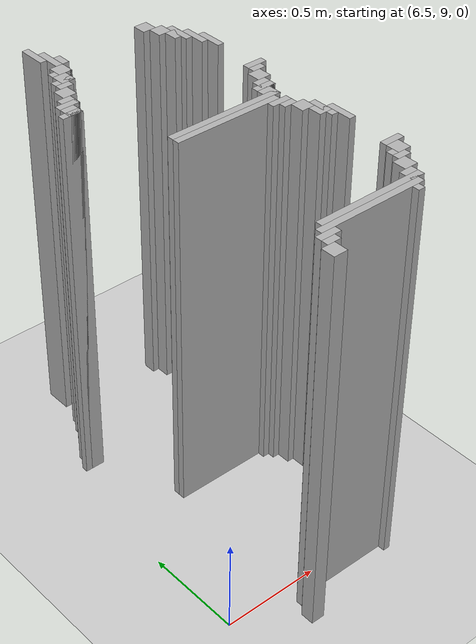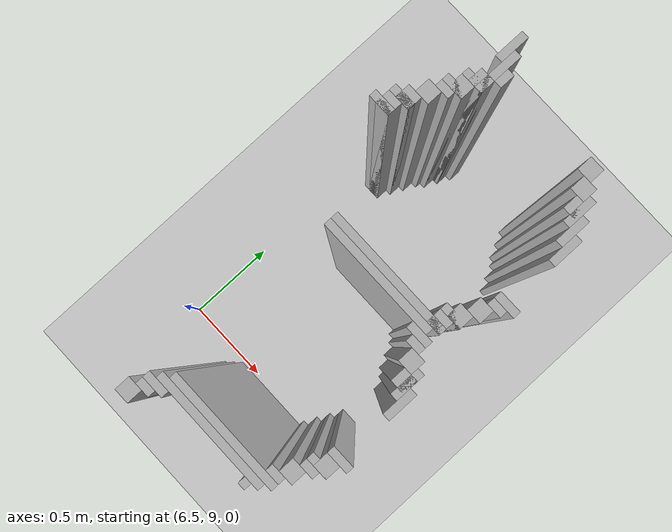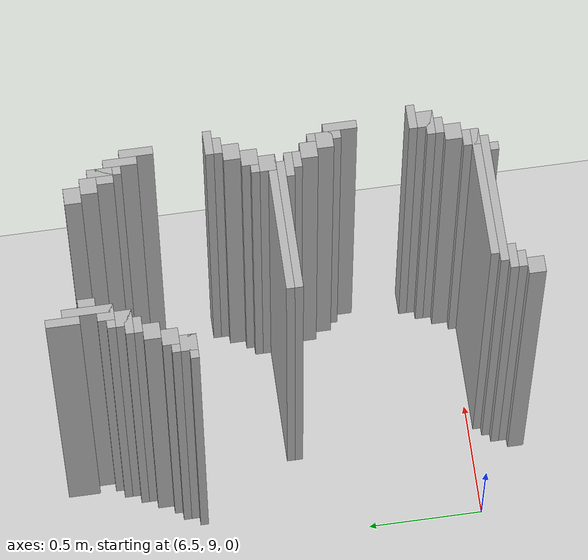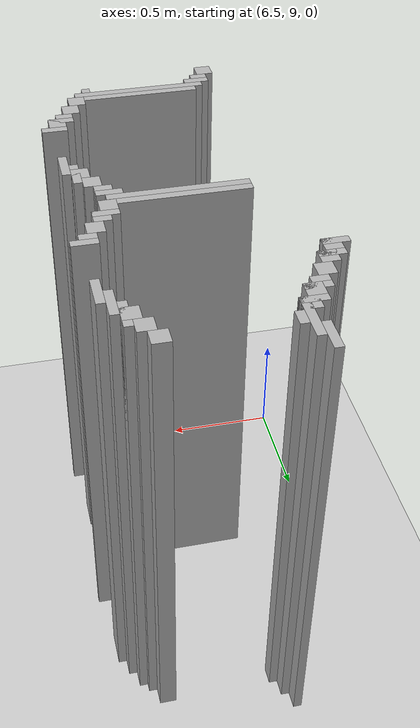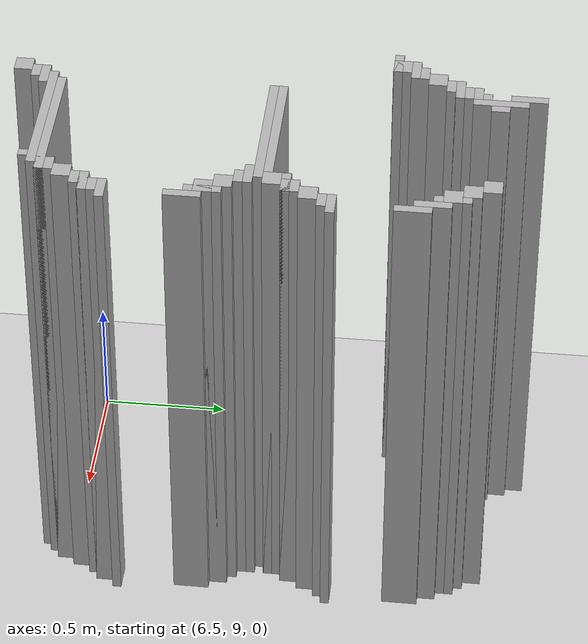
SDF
<sdf version="1.6">
 <world name="slam_world">
  <model name="ground_plane">
   <static>true</static>
   <link name="link">
    <collision name="collision">
     <geometry><plane><normal>0 0 1</normal><size>100 100</size></plane></geometry>
    </collision>
    <visual name="visual">
     <geometry><plane><normal>0 0 1</normal><size>100 100</size></plane></geometry>
     <material>
      <ambient>0.8 0.8 0.8 1</ambient>
      <diffuse>0.8 0.8 0.8 1</diffuse>
      <specular>0.8 0.8 0.8 1</specular>
     </material>
    </visual>
   </link>
  </model>
  <model name="wall_2181">
   <static>true</static>
   <pose>6.838747099767981 10.719257540603248 1.0 0 0 0</pose>
   <link name="link">
    <collision name="collision">
     <geometry><box><size>0.03480278422273782 0.13921113689095127 2.0</size></box></geometry>
    </collision>
    <visual name="visual">
     <geometry><box><size>0.03480278422273782 0.13921113689095127 2.0</size></box></geometry>
     <material><ambient>0.5 0.5 0.5 1</ambient><diffuse>0.7 0.7 0.7 1</diffuse></material>
    </visual>
   </link>
  </model>
  <model name="wall_2201">
   <static>true</static>
   <pose>6.8735498839907185 10.614849187935034 1.0 0 0 0</pose>
   <link name="link">
    <collision name="collision">
     <geometry><box><size>0.03480278422273782 0.2088167053364269 2.0</size></box></geometry>
    </collision>
    <visual name="visual">
     <geometry><box><size>0.03480278422273782 0.2088167053364269 2.0</size></box></geometry>
     <material><ambient>0.5 0.5 0.5 1</ambient><diffuse>0.7 0.7 0.7 1</diffuse></material>
    </visual>
   </link>
  </model>
  <model name="wall_2223">
   <static>true</static>
   <pose>6.908352668213457 10.614849187935034 1.0 0 0 0</pose>
   <link name="link">
    <collision name="collision">
     <geometry><box><size>0.03480278422273782 0.06960556844547564 2.0</size></box></geometry>
    </collision>
    <visual name="visual">
     <geometry><box><size>0.03480278422273782 0.06960556844547564 2.0</size></box></geometry>
     <material><ambient>0.5 0.5 0.5 1</ambient><diffuse>0.7 0.7 0.7 1</diffuse></material>
    </visual>
   </link>
  </model>
  <model name="wall_2224">
   <static>true</static>
   <pose>7.378190255220417 10.614849187935034 1.0 0 0 0</pose>
   <link name="link">
    <collision name="collision">
     <geometry><box><size>0.06960556844547564 0.06960556844547564 2.0</size></box></geometry>
    </collision>
    <visual name="visual">
     <geometry><box><size>0.06960556844547564 0.06960556844547564 2.0</size></box></geometry>
     <material><ambient>0.5 0.5 0.5 1</ambient><diffuse>0.7 0.7 0.7 1</diffuse></material>
    </visual>
   </link>
  </model>
  <model name="wall_2242">
   <static>true</static>
   <pose>6.85614849187935 10.54524361948956 1.0 0 0 0</pose>
   <link name="link">
    <collision name="collision">
     <geometry><box><size>0.06960556844547564 0.06960556844547564 2.0</size></box></geometry>
    </collision>
    <visual name="visual">
     <geometry><box><size>0.06960556844547564 0.06960556844547564 2.0</size></box></geometry>
     <material><ambient>0.5 0.5 0.5 1</ambient><diffuse>0.7 0.7 0.7 1</diffuse></material>
    </visual>
   </link>
  </model>
  <model name="wall_2243">
   <static>true</static>
   <pose>7.412993039443156 10.54524361948956 1.0 0 0 0</pose>
   <link name="link">
    <collision name="collision">
     <geometry><box><size>0.06960556844547564 0.06960556844547564 2.0</size></box></geometry>
    </collision>
    <visual name="visual">
     <geometry><box><size>0.06960556844547564 0.06960556844547564 2.0</size></box></geometry>
     <material><ambient>0.5 0.5 0.5 1</ambient><diffuse>0.7 0.7 0.7 1</diffuse></material>
    </visual>
   </link>
  </model>
  <model name="wall_2259">
   <static>true</static>
   <pose>6.838747099767981 10.52784222737819 1.0 0 0 0</pose>
   <link name="link">
    <collision name="collision">
     <geometry><box><size>0.10440835266821345 0.03480278422273782 2.0</size></box></geometry>
    </collision>
    <visual name="visual">
     <geometry><box><size>0.10440835266821345 0.03480278422273782 2.0</size></box></geometry>
     <material><ambient>0.5 0.5 0.5 1</ambient><diffuse>0.7 0.7 0.7 1</diffuse></material>
    </visual>
   </link>
  </model>
  <model name="wall_2260">
   <static>true</static>
   <pose>7.465197215777262 10.475638051044083 1.0 0 0 0</pose>
   <link name="link">
    <collision name="collision">
     <geometry><box><size>0.03480278422273782 0.13921113689095127 2.0</size></box></geometry>
    </collision>
    <visual name="visual">
     <geometry><box><size>0.03480278422273782 0.13921113689095127 2.0</size></box></geometry>
     <material><ambient>0.5 0.5 0.5 1</ambient><diffuse>0.7 0.7 0.7 1</diffuse></material>
    </visual>
   </link>
  </model>
  <model name="wall_2276">
   <static>true</static>
   <pose>6.821345707656612 10.475638051044083 1.0 0 0 0</pose>
   <link name="link">
    <collision name="collision">
     <geometry><box><size>0.06960556844547564 0.06960556844547564 2.0</size></box></geometry>
    </collision>
    <visual name="visual">
     <geometry><box><size>0.06960556844547564 0.06960556844547564 2.0</size></box></geometry>
     <material><ambient>0.5 0.5 0.5 1</ambient><diffuse>0.7 0.7 0.7 1</diffuse></material>
    </visual>
   </link>
  </model>
  <model name="wall_2277">
   <static>true</static>
   <pose>7.447795823665893 10.475638051044083 1.0 0 0 0</pose>
   <link name="link">
    <collision name="collision">
     <geometry><box><size>0.06960556844547564 0.06960556844547564 2.0</size></box></geometry>
    </collision>
    <visual name="visual">
     <geometry><box><size>0.06960556844547564 0.06960556844547564 2.0</size></box></geometry>
     <material><ambient>0.5 0.5 0.5 1</ambient><diffuse>0.7 0.7 0.7 1</diffuse></material>
    </visual>
   </link>
  </model>
  <model name="wall_2293">
   <static>true</static>
   <pose>6.803944315545244 10.458236658932714 1.0 0 0 0</pose>
   <link name="link">
    <collision name="collision">
     <geometry><box><size>0.10440835266821345 0.03480278422273782 2.0</size></box></geometry>
    </collision>
    <visual name="visual">
     <geometry><box><size>0.10440835266821345 0.03480278422273782 2.0</size></box></geometry>
     <material><ambient>0.5 0.5 0.5 1</ambient><diffuse>0.7 0.7 0.7 1</diffuse></material>
    </visual>
   </link>
  </model>
  <model name="wall_2294">
   <static>true</static>
   <pose>7.5 10.406032482598608 1.0 0 0 0</pose>
   <link name="link">
    <collision name="collision">
     <geometry><box><size>0.03480278422273782 0.13921113689095127 2.0</size></box></geometry>
    </collision>
    <visual name="visual">
     <geometry><box><size>0.03480278422273782 0.13921113689095127 2.0</size></box></geometry>
     <material><ambient>0.5 0.5 0.5 1</ambient><diffuse>0.7 0.7 0.7 1</diffuse></material>
    </visual>
   </link>
  </model>
  <model name="wall_2306">
   <static>true</static>
   <pose>6.786542923433874 10.423433874709977 1.0 0 0 0</pose>
   <link name="link">
    <collision name="collision">
     <geometry><box><size>0.06960556844547564 0.03480278422273782 2.0</size></box></geometry>
    </collision>
    <visual name="visual">
     <geometry><box><size>0.06960556844547564 0.03480278422273782 2.0</size></box></geometry>
     <material><ambient>0.5 0.5 0.5 1</ambient><diffuse>0.7 0.7 0.7 1</diffuse></material>
    </visual>
   </link>
  </model>
  <model name="wall_2318">
   <static>true</static>
   <pose>6.751740139211137 10.37122969837587 1.0 0 0 0</pose>
   <link name="link">
    <collision name="collision">
     <geometry><box><size>0.06960556844547564 0.06960556844547564 2.0</size></box></geometry>
    </collision>
    <visual name="visual">
     <geometry><box><size>0.06960556844547564 0.06960556844547564 2.0</size></box></geometry>
     <material><ambient>0.5 0.5 0.5 1</ambient><diffuse>0.7 0.7 0.7 1</diffuse></material>
    </visual>
   </link>
  </model>
  <model name="wall_2319">
   <static>true</static>
   <pose>7.534802784222737 10.336426914153131 1.0 0 0 0</pose>
   <link name="link">
    <collision name="collision">
     <geometry><box><size>0.03480278422273782 0.13921113689095127 2.0</size></box></geometry>
    </collision>
    <visual name="visual">
     <geometry><box><size>0.03480278422273782 0.13921113689095127 2.0</size></box></geometry>
     <material><ambient>0.5 0.5 0.5 1</ambient><diffuse>0.7 0.7 0.7 1</diffuse></material>
    </visual>
   </link>
  </model>
  <model name="wall_2335">
   <static>true</static>
   <pose>6.716937354988398 10.301624129930394 1.0 0 0 0</pose>
   <link name="link">
    <collision name="collision">
     <geometry><box><size>0.06960556844547564 0.06960556844547564 2.0</size></box></geometry>
    </collision>
    <visual name="visual">
     <geometry><box><size>0.06960556844547564 0.06960556844547564 2.0</size></box></geometry>
     <material><ambient>0.5 0.5 0.5 1</ambient><diffuse>0.7 0.7 0.7 1</diffuse></material>
    </visual>
   </link>
  </model>
  <model name="wall_2352">
   <static>true</static>
   <pose>6.69953596287703 10.284222737819025 1.0 0 0 0</pose>
   <link name="link">
    <collision name="collision">
     <geometry><box><size>0.10440835266821345 0.03480278422273782 2.0</size></box></geometry>
    </collision>
    <visual name="visual">
     <geometry><box><size>0.10440835266821345 0.03480278422273782 2.0</size></box></geometry>
     <material><ambient>0.5 0.5 0.5 1</ambient><diffuse>0.7 0.7 0.7 1</diffuse></material>
    </visual>
   </link>
  </model>
  <model name="wall_2365">
   <static>true</static>
   <pose>6.682134570765661 10.232018561484919 1.0 0 0 0</pose>
   <link name="link">
    <collision name="collision">
     <geometry><box><size>0.06960556844547564 0.06960556844547564 2.0</size></box></geometry>
    </collision>
    <visual name="visual">
     <geometry><box><size>0.06960556844547564 0.06960556844547564 2.0</size></box></geometry>
     <material><ambient>0.5 0.5 0.5 1</ambient><diffuse>0.7 0.7 0.7 1</diffuse></material>
    </visual>
   </link>
  </model>
  <model name="wall_2375">
   <static>true</static>
   <pose>6.664733178654292 10.214617169373549 1.0 0 0 0</pose>
   <link name="link">
    <collision name="collision">
     <geometry><box><size>0.10440835266821345 0.03480278422273782 2.0</size></box></geometry>
    </collision>
    <visual name="visual">
     <geometry><box><size>0.10440835266821345 0.03480278422273782 2.0</size></box></geometry>
     <material><ambient>0.5 0.5 0.5 1</ambient><diffuse>0.7 0.7 0.7 1</diffuse></material>
    </visual>
   </link>
  </model>
  <model name="wall_2445">
   <static>true</static>
   <pose>7.534802784222737 10.04060324825986 1.0 0 0 0</pose>
   <link name="link">
    <collision name="collision">
     <geometry><box><size>0.10440835266821345 0.03480278422273782 2.0</size></box></geometry>
    </collision>
    <visual name="visual">
     <geometry><box><size>0.10440835266821345 0.03480278422273782 2.0</size></box></geometry>
     <material><ambient>0.5 0.5 0.5 1</ambient><diffuse>0.7 0.7 0.7 1</diffuse></material>
    </visual>
   </link>
  </model>
  <model name="wall_2458">
   <static>true</static>
   <pose>7.517401392111369 10.005800464037122 1.0 0 0 0</pose>
   <link name="link">
    <collision name="collision">
     <geometry><box><size>0.06960556844547564 0.03480278422273782 2.0</size></box></geometry>
    </collision>
    <visual name="visual">
     <geometry><box><size>0.06960556844547564 0.03480278422273782 2.0</size></box></geometry>
     <material><ambient>0.5 0.5 0.5 1</ambient><diffuse>0.7 0.7 0.7 1</diffuse></material>
    </visual>
   </link>
  </model>
  <model name="wall_2470">
   <static>true</static>
   <pose>7.48259860788863 9.953596287703016 1.0 0 0 0</pose>
   <link name="link">
    <collision name="collision">
     <geometry><box><size>0.06960556844547564 0.06960556844547564 2.0</size></box></geometry>
    </collision>
    <visual name="visual">
     <geometry><box><size>0.06960556844547564 0.06960556844547564 2.0</size></box></geometry>
     <material><ambient>0.5 0.5 0.5 1</ambient><diffuse>0.7 0.7 0.7 1</diffuse></material>
    </visual>
   </link>
  </model>
  <model name="wall_2486">
   <static>true</static>
   <pose>7.447795823665893 9.88399071925754 1.0 0 0 0</pose>
   <link name="link">
    <collision name="collision">
     <geometry><box><size>0.06960556844547564 0.06960556844547564 2.0</size></box></geometry>
    </collision>
    <visual name="visual">
     <geometry><box><size>0.06960556844547564 0.06960556844547564 2.0</size></box></geometry>
     <material><ambient>0.5 0.5 0.5 1</ambient><diffuse>0.7 0.7 0.7 1</diffuse></material>
    </visual>
   </link>
  </model>
  <model name="wall_2502">
   <static>true</static>
   <pose>7.430394431554524 9.86658932714617 1.0 0 0 0</pose>
   <link name="link">
    <collision name="collision">
     <geometry><box><size>0.10440835266821345 0.03480278422273782 2.0</size></box></geometry>
    </collision>
    <visual name="visual">
     <geometry><box><size>0.10440835266821345 0.03480278422273782 2.0</size></box></geometry>
     <material><ambient>0.5 0.5 0.5 1</ambient><diffuse>0.7 0.7 0.7 1</diffuse></material>
    </visual>
   </link>
  </model>
  <model name="wall_2515">
   <static>true</static>
   <pose>7.412993039443156 9.814385150812065 1.0 0 0 0</pose>
   <link name="link">
    <collision name="collision">
     <geometry><box><size>0.06960556844547564 0.06960556844547564 2.0</size></box></geometry>
    </collision>
    <visual name="visual">
     <geometry><box><size>0.06960556844547564 0.06960556844547564 2.0</size></box></geometry>
     <material><ambient>0.5 0.5 0.5 1</ambient><diffuse>0.7 0.7 0.7 1</diffuse></material>
    </visual>
   </link>
  </model>
  <model name="wall_2525">
   <static>true</static>
   <pose>7.151972157772621 9.796983758700696 1.0 0 0 0</pose>
   <link name="link">
    <collision name="collision">
     <geometry><box><size>0.5916473317865429 0.03480278422273782 2.0</size></box></geometry>
    </collision>
    <visual name="visual">
     <geometry><box><size>0.5916473317865429 0.03480278422273782 2.0</size></box></geometry>
     <material><ambient>0.5 0.5 0.5 1</ambient><diffuse>0.7 0.7 0.7 1</diffuse></material>
    </visual>
   </link>
  </model>
  <model name="wall_2538">
   <static>true</static>
   <pose>7.134570765661253 9.762180974477959 1.0 0 0 0</pose>
   <link name="link">
    <collision name="collision">
     <geometry><box><size>0.5568445475638051 0.03480278422273782 2.0</size></box></geometry>
    </collision>
    <visual name="visual">
     <geometry><box><size>0.5568445475638051 0.03480278422273782 2.0</size></box></geometry>
     <material><ambient>0.5 0.5 0.5 1</ambient><diffuse>0.7 0.7 0.7 1</diffuse></material>
    </visual>
   </link>
  </model>
  <model name="wall_2546">
   <static>true</static>
   <pose>7.395591647331786 9.72737819025522 1.0 0 0 0</pose>
   <link name="link">
    <collision name="collision">
     <geometry><box><size>0.10440835266821345 0.03480278422273782 2.0</size></box></geometry>
    </collision>
    <visual name="visual">
     <geometry><box><size>0.10440835266821345 0.03480278422273782 2.0</size></box></geometry>
     <material><ambient>0.5 0.5 0.5 1</ambient><diffuse>0.7 0.7 0.7 1</diffuse></material>
    </visual>
   </link>
  </model>
  <model name="wall_2556">
   <static>true</static>
   <pose>7.412993039443156 9.692575406032482 1.0 0 0 0</pose>
   <link name="link">
    <collision name="collision">
     <geometry><box><size>0.06960556844547564 0.03480278422273782 2.0</size></box></geometry>
    </collision>
    <visual name="visual">
     <geometry><box><size>0.06960556844547564 0.03480278422273782 2.0</size></box></geometry>
     <material><ambient>0.5 0.5 0.5 1</ambient><diffuse>0.7 0.7 0.7 1</diffuse></material>
    </visual>
   </link>
  </model>
  <model name="wall_2563">
   <static>true</static>
   <pose>7.447795823665893 9.640371229698376 1.0 0 0 0</pose>
   <link name="link">
    <collision name="collision">
     <geometry><box><size>0.06960556844547564 0.06960556844547564 2.0</size></box></geometry>
    </collision>
    <visual name="visual">
     <geometry><box><size>0.06960556844547564 0.06960556844547564 2.0</size></box></geometry>
     <material><ambient>0.5 0.5 0.5 1</ambient><diffuse>0.7 0.7 0.7 1</diffuse></material>
    </visual>
   </link>
  </model>
  <model name="wall_2574">
   <static>true</static>
   <pose>7.5 9.5707656612529 1.0 0 0 0</pose>
   <link name="link">
    <collision name="collision">
     <geometry><box><size>0.03480278422273782 0.13921113689095127 2.0</size></box></geometry>
    </collision>
    <visual name="visual">
     <geometry><box><size>0.03480278422273782 0.13921113689095127 2.0</size></box></geometry>
     <material><ambient>0.5 0.5 0.5 1</ambient><diffuse>0.7 0.7 0.7 1</diffuse></material>
    </visual>
   </link>
  </model>
  <model name="wall_2585">
   <static>true</static>
   <pose>7.48259860788863 9.5707656612529 1.0 0 0 0</pose>
   <link name="link">
    <collision name="collision">
     <geometry><box><size>0.06960556844547564 0.06960556844547564 2.0</size></box></geometry>
    </collision>
    <visual name="visual">
     <geometry><box><size>0.06960556844547564 0.06960556844547564 2.0</size></box></geometry>
     <material><ambient>0.5 0.5 0.5 1</ambient><diffuse>0.7 0.7 0.7 1</diffuse></material>
    </visual>
   </link>
  </model>
  <model name="wall_2596">
   <static>true</static>
   <pose>7.534802784222737 9.501160092807424 1.0 0 0 0</pose>
   <link name="link">
    <collision name="collision">
     <geometry><box><size>0.03480278422273782 0.13921113689095127 2.0</size></box></geometry>
    </collision>
    <visual name="visual">
     <geometry><box><size>0.03480278422273782 0.13921113689095127 2.0</size></box></geometry>
     <material><ambient>0.5 0.5 0.5 1</ambient><diffuse>0.7 0.7 0.7 1</diffuse></material>
    </visual>
   </link>
  </model>
  <model name="wall_2712">
   <static>true</static>
   <pose>7.534802784222737 9.205336426914153 1.0 0 0 0</pose>
   <link name="link">
    <collision name="collision">
     <geometry><box><size>0.10440835266821345 0.03480278422273782 2.0</size></box></geometry>
    </collision>
    <visual name="visual">
     <geometry><box><size>0.10440835266821345 0.03480278422273782 2.0</size></box></geometry>
     <material><ambient>0.5 0.5 0.5 1</ambient><diffuse>0.7 0.7 0.7 1</diffuse></material>
    </visual>
   </link>
  </model>
  <model name="wall_2728">
   <static>true</static>
   <pose>7.517401392111369 9.153132250580047 1.0 0 0 0</pose>
   <link name="link">
    <collision name="collision">
     <geometry><box><size>0.06960556844547564 0.06960556844547564 2.0</size></box></geometry>
    </collision>
    <visual name="visual">
     <geometry><box><size>0.06960556844547564 0.06960556844547564 2.0</size></box></geometry>
     <material><ambient>0.5 0.5 0.5 1</ambient><diffuse>0.7 0.7 0.7 1</diffuse></material>
    </visual>
   </link>
  </model>
  <model name="wall_2742">
   <static>true</static>
   <pose>7.5 9.135730858468676 1.0 0 0 0</pose>
   <link name="link">
    <collision name="collision">
     <geometry><box><size>0.10440835266821345 0.03480278422273782 2.0</size></box></geometry>
    </collision>
    <visual name="visual">
     <geometry><box><size>0.10440835266821345 0.03480278422273782 2.0</size></box></geometry>
     <material><ambient>0.5 0.5 0.5 1</ambient><diffuse>0.7 0.7 0.7 1</diffuse></material>
    </visual>
   </link>
  </model>
  <model name="wall_2757">
   <static>true</static>
   <pose>7.48259860788863 9.100928074245939 1.0 0 0 0</pose>
   <link name="link">
    <collision name="collision">
     <geometry><box><size>0.06960556844547564 0.03480278422273782 2.0</size></box></geometry>
    </collision>
    <visual name="visual">
     <geometry><box><size>0.06960556844547564 0.03480278422273782 2.0</size></box></geometry>
     <material><ambient>0.5 0.5 0.5 1</ambient><diffuse>0.7 0.7 0.7 1</diffuse></material>
    </visual>
   </link>
  </model>
  <model name="wall_2771">
   <static>true</static>
   <pose>7.447795823665893 9.048723897911833 1.0 0 0 0</pose>
   <link name="link">
    <collision name="collision">
     <geometry><box><size>0.06960556844547564 0.06960556844547564 2.0</size></box></geometry>
    </collision>
    <visual name="visual">
     <geometry><box><size>0.06960556844547564 0.06960556844547564 2.0</size></box></geometry>
     <material><ambient>0.5 0.5 0.5 1</ambient><diffuse>0.7 0.7 0.7 1</diffuse></material>
    </visual>
   </link>
  </model>
  <model name="wall_2789">
   <static>true</static>
   <pose>7.412993039443156 8.979118329466356 1.0 0 0 0</pose>
   <link name="link">
    <collision name="collision">
     <geometry><box><size>0.06960556844547564 0.06960556844547564 2.0</size></box></geometry>
    </collision>
    <visual name="visual">
     <geometry><box><size>0.06960556844547564 0.06960556844547564 2.0</size></box></geometry>
     <material><ambient>0.5 0.5 0.5 1</ambient><diffuse>0.7 0.7 0.7 1</diffuse></material>
    </visual>
   </link>
  </model>
  <model name="wall_2804">
   <static>true</static>
   <pose>7.16937354988399 8.961716937354987 1.0 0 0 0</pose>
   <link name="link">
    <collision name="collision">
     <geometry><box><size>0.5568445475638051 0.03480278422273782 2.0</size></box></geometry>
    </collision>
    <visual name="visual">
     <geometry><box><size>0.5568445475638051 0.03480278422273782 2.0</size></box></geometry>
     <material><ambient>0.5 0.5 0.5 1</ambient><diffuse>0.7 0.7 0.7 1</diffuse></material>
    </visual>
   </link>
  </model>
  <model name="wall_2818">
   <static>true</static>
   <pose>7.134570765661253 8.92691415313225 1.0 0 0 0</pose>
   <link name="link">
    <collision name="collision">
     <geometry><box><size>0.5568445475638051 0.03480278422273782 2.0</size></box></geometry>
    </collision>
    <visual name="visual">
     <geometry><box><size>0.5568445475638051 0.03480278422273782 2.0</size></box></geometry>
     <material><ambient>0.5 0.5 0.5 1</ambient><diffuse>0.7 0.7 0.7 1</diffuse></material>
    </visual>
   </link>
  </model>
  <model name="wall_2832">
   <static>true</static>
   <pose>6.8735498839907185 8.892111368909513 1.0 0 0 0</pose>
   <link name="link">
    <collision name="collision">
     <geometry><box><size>0.10440835266821345 0.03480278422273782 2.0</size></box></geometry>
    </collision>
    <visual name="visual">
     <geometry><box><size>0.10440835266821345 0.03480278422273782 2.0</size></box></geometry>
     <material><ambient>0.5 0.5 0.5 1</ambient><diffuse>0.7 0.7 0.7 1</diffuse></material>
    </visual>
   </link>
  </model>
  <model name="wall_2833">
   <static>true</static>
   <pose>7.360788863109049 8.892111368909513 1.0 0 0 0</pose>
   <link name="link">
    <collision name="collision">
     <geometry><box><size>0.03480278422273782 0.03480278422273782 2.0</size></box></geometry>
    </collision>
    <visual name="visual">
     <geometry><box><size>0.03480278422273782 0.03480278422273782 2.0</size></box></geometry>
     <material><ambient>0.5 0.5 0.5 1</ambient><diffuse>0.7 0.7 0.7 1</diffuse></material>
    </visual>
   </link>
  </model>
  <model name="wall_2850">
   <static>true</static>
   <pose>6.85614849187935 8.857308584686775 1.0 0 0 0</pose>
   <link name="link">
    <collision name="collision">
     <geometry><box><size>0.06960556844547564 0.03480278422273782 2.0</size></box></geometry>
    </collision>
    <visual name="visual">
     <geometry><box><size>0.06960556844547564 0.03480278422273782 2.0</size></box></geometry>
     <material><ambient>0.5 0.5 0.5 1</ambient><diffuse>0.7 0.7 0.7 1</diffuse></material>
    </visual>
   </link>
  </model>
  <model name="wall_2865">
   <static>true</static>
   <pose>6.821345707656612 8.805104408352667 1.0 0 0 0</pose>
   <link name="link">
    <collision name="collision">
     <geometry><box><size>0.06960556844547564 0.06960556844547564 2.0</size></box></geometry>
    </collision>
    <visual name="visual">
     <geometry><box><size>0.06960556844547564 0.06960556844547564 2.0</size></box></geometry>
     <material><ambient>0.5 0.5 0.5 1</ambient><diffuse>0.7 0.7 0.7 1</diffuse></material>
    </visual>
   </link>
  </model>
 </world>
</sdf>
